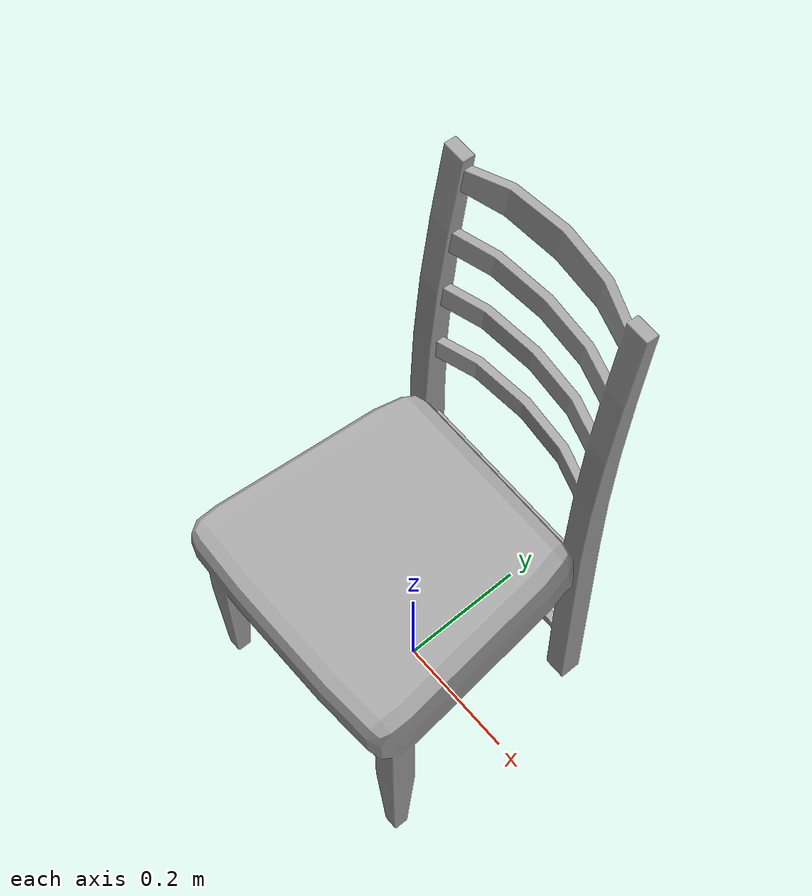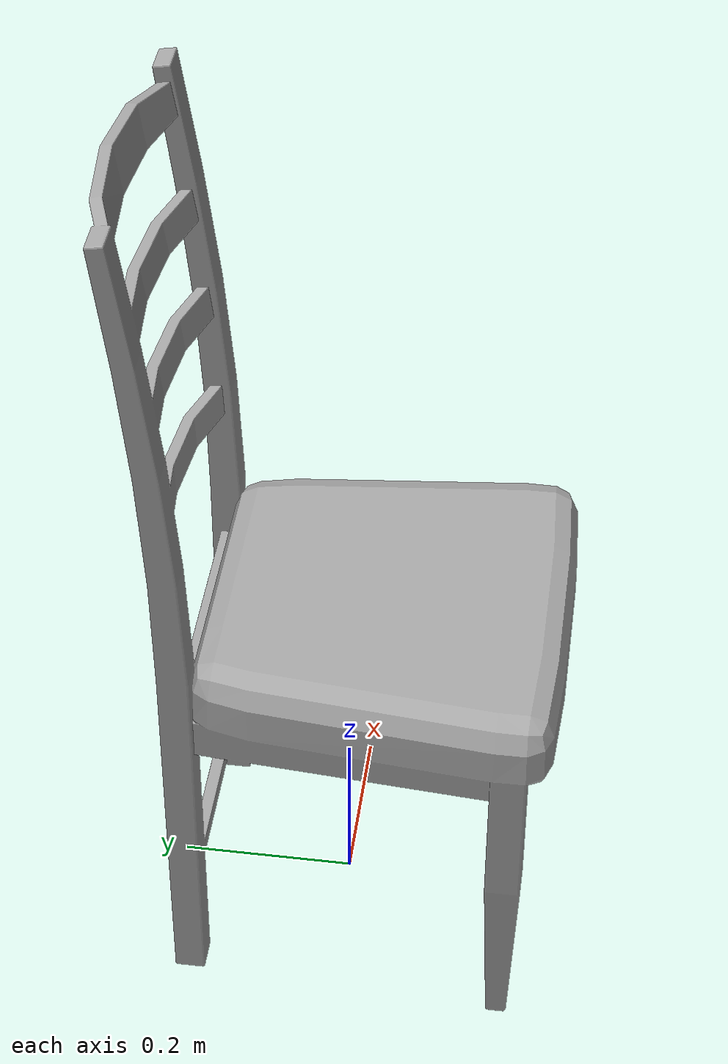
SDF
<?xml version="1.0" ?>
<sdf version="1.5">
  <model name='chair4'>
    <pose>0 0 0 0 0 0</pose>
    <static>1</static>
    <link name='body'>
      <collision name="chair4-coll">
        <pose>0 0 0 0 0 0</pose>
        <geometry>
          <mesh>
            <uri>model://chair4/meshes/chair4.dae</uri>
          </mesh>
        </geometry>
      </collision>
      <visual name='chair4'>
        <cast_shadows>1</cast_shadows>
        <geometry>
          <mesh>
            <uri>model://chair4/meshes/chair4.dae</uri>
          </mesh>
        </geometry>
      </visual>
      <velocity_decay>
        <linear>0</linear>
        <angular>0</angular>
      </velocity_decay>
      <self_collide>0</self_collide>
      <kinematic>0</kinematic>
      <gravity>1</gravity>
    </link>
  </model>

</sdf>
